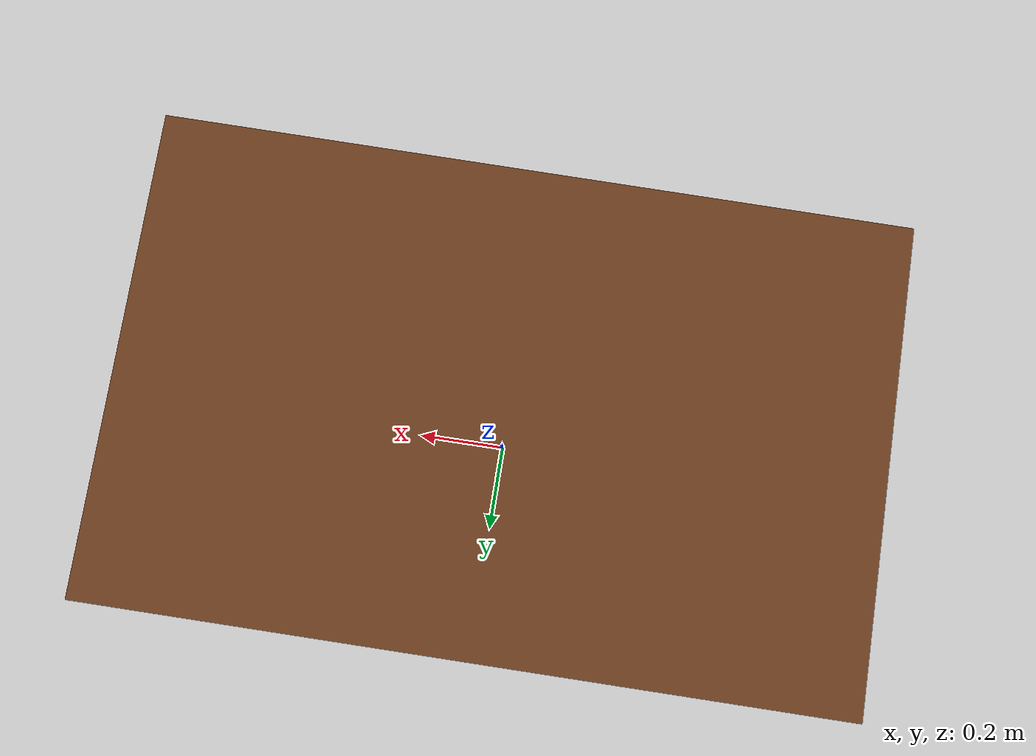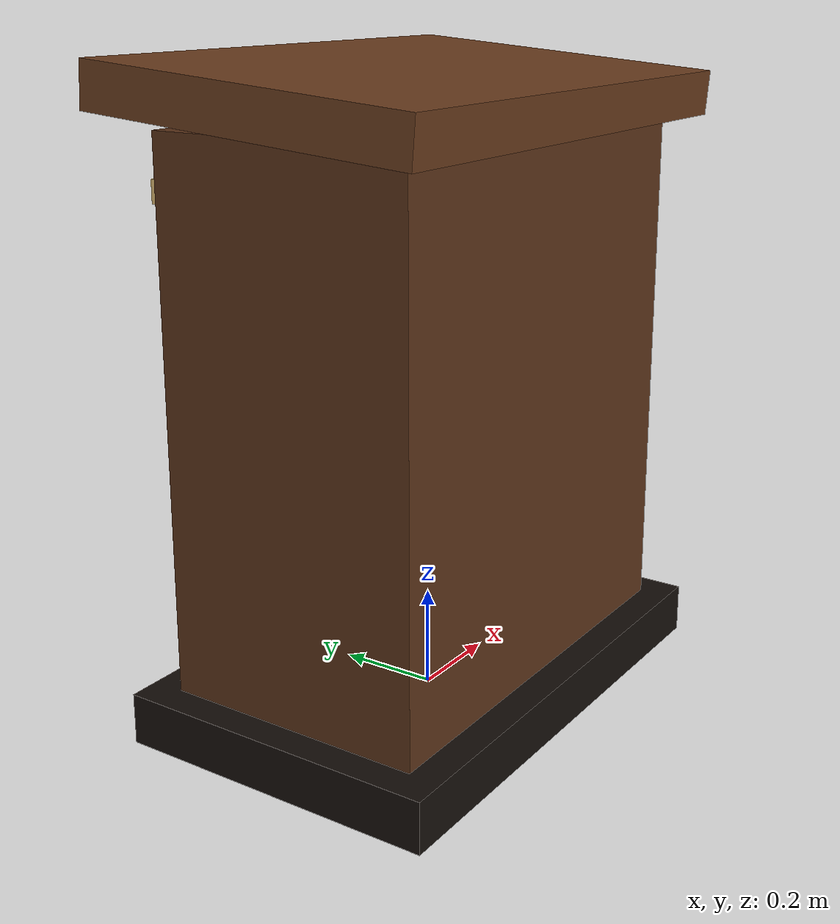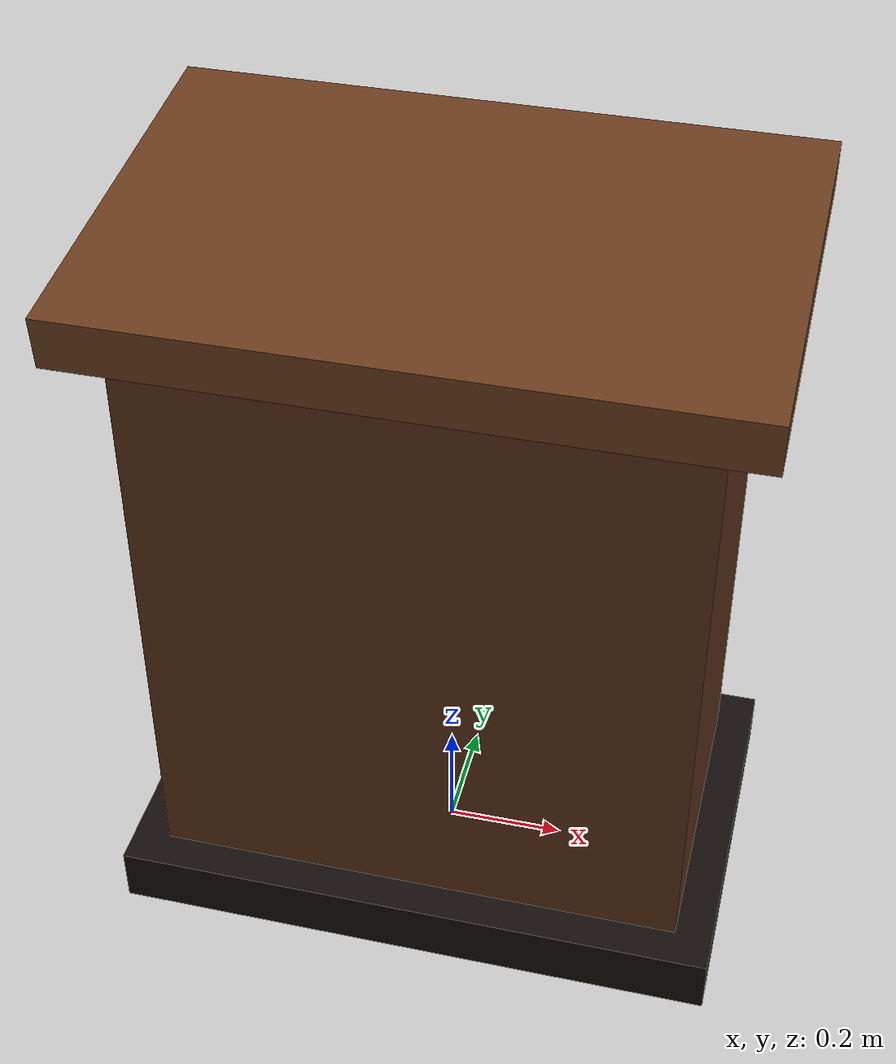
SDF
<?xml version="1.0"?>
<sdf version="1.10">
  <model name="podium">
    <static>true</static>
    <link name="podium_link">
      <collision name="podium_collision">
        <pose>0 0 0.6125 0 0 0</pose>
        <geometry>
          <box>
            <size>0.9375 0.5625 1.225</size>
          </box>
        </geometry>
      </collision>

      <visual name="base_visual">
        <pose>0 0 0.05 0 0 0</pose>
        <geometry>
          <box>
            <size>1.025 0.65 0.10</size>
          </box>
        </geometry>
        <material>
          <ambient>0.06 0.045 0.035 1</ambient>
          <diffuse>0.08 0.055 0.04 1</diffuse>
          <specular>0.18 0.14 0.10 1</specular>
        </material>
      </visual>

      <visual name="body_visual">
        <pose>0 0 0.6125 0 0 0</pose>
        <geometry>
          <box>
            <size>0.90 0.525 1.075</size>
          </box>
        </geometry>
        <material>
          <ambient>0.26 0.14 0.07 1</ambient>
          <diffuse>0.36 0.20 0.10 1</diffuse>
          <specular>0.22 0.16 0.10 1</specular>
        </material>
      </visual>

      <visual name="front_panel_visual">
        <pose>0 0.27875 0.625 0 0 0</pose>
        <geometry>
          <box>
            <size>0.75 0.03125 0.725</size>
          </box>
        </geometry>
        <material>
          <ambient>0.18 0.10 0.055 1</ambient>
          <diffuse>0.28 0.16 0.08 1</diffuse>
          <specular>0.16 0.11 0.07 1</specular>
        </material>
      </visual>

      <visual name="top_visual">
        <pose>0 0.0125 1.20 0.08 0 0</pose>
        <geometry>
          <box>
            <size>1.05 0.675 0.0875</size>
          </box>
        </geometry>
        <material>
          <ambient>0.30 0.16 0.08 1</ambient>
          <diffuse>0.42 0.24 0.12 1</diffuse>
          <specular>0.28 0.20 0.12 1</specular>
        </material>
      </visual>

      <visual name="trim_visual">
        <pose>0 0.29625 1.0375 0 0 0</pose>
        <geometry>
          <box>
            <size>0.825 0.0225 0.04375</size>
          </box>
        </geometry>
        <material>
          <ambient>0.72 0.61 0.38 1</ambient>
          <diffuse>0.86 0.73 0.46 1</diffuse>
          <specular>0.70 0.62 0.42 1</specular>
        </material>
      </visual>
    </link>
  </model>
</sdf>
